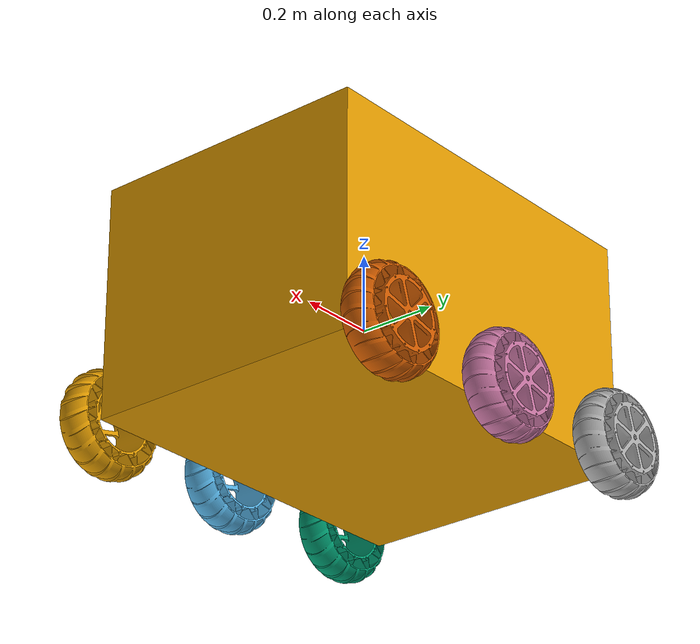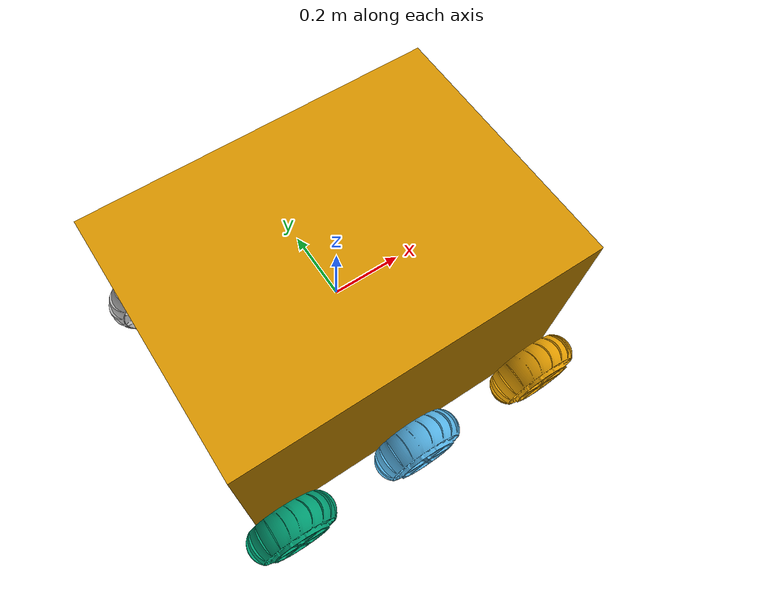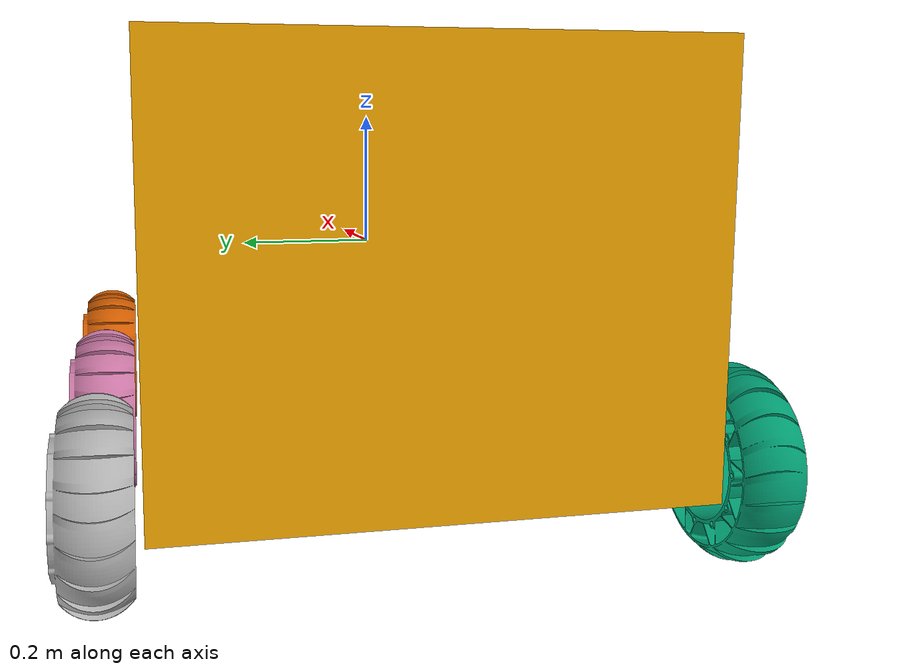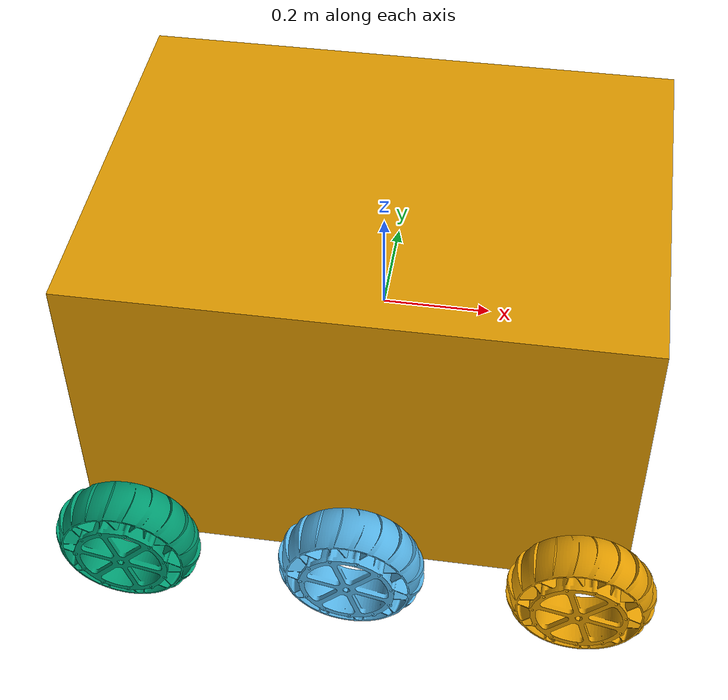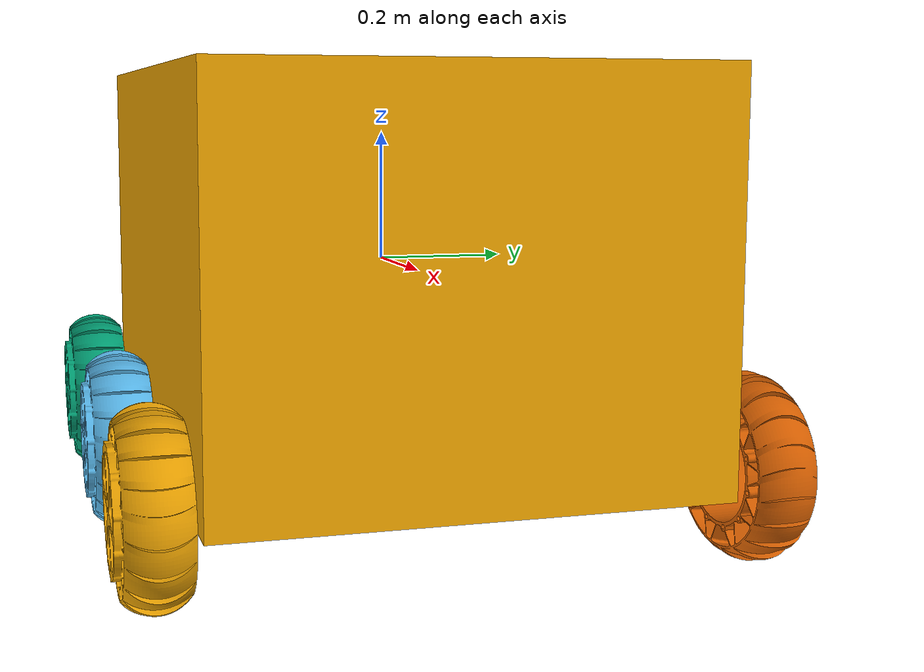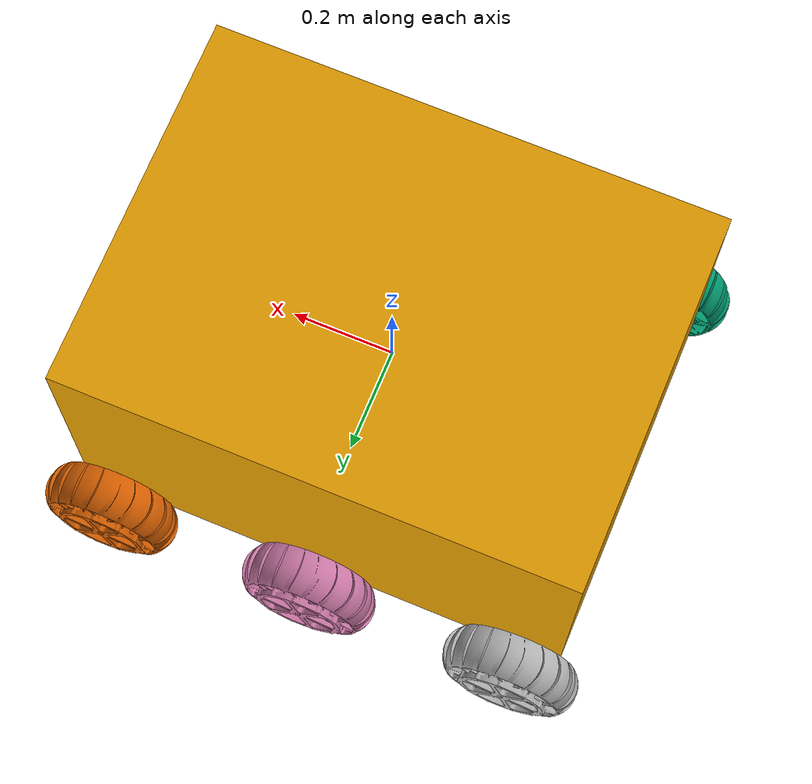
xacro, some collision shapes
<?xml version="1.0"?>
<robot xmlns:xacro="http://www.ros.org/wiki/xacro" name="rover">

  <xacro:property name="base_width" value="0.7357"/>
  <xacro:property name="base_len" value="1.0"/>
  <xacro:property name="base_height" value="0.6"/>
  <xacro:property name="wheel_radius" value="0.13"/>
  <xacro:property name="wheel_width" value="0.1"/>
  <xacro:property name="wheel_mass" value="2"/>

  <xacro:property name="PI" value="3.141592"/>

  <!--Interial macros-->
  <xacro:macro name="cylinder_inertia" params="m r h">
    <inertial>
      <mass value="${m}"/>
      <inertia ixx="${m*(3*r*r+h*h)/12}" ixy="0" ixz="0" iyy="${m*(3*r*r+h*h)/12}" iyz="0" izz="${m*r*r/2}"/>
    </inertial>
  </xacro:macro>

  <xacro:macro name="box_inertia" params="m w h d">
    <inertial>
      <mass value="${m}"/>
      <inertia ixx="${m / 12.0 * (d*d + h*h)}" ixy="0.0" ixz="0.0" iyy="${m / 12.0 * (w*w + h*h)}" iyz="0.0" izz="${m / 12.0 * (w*w + d*d)}"/>
    </inertial>
  </xacro:macro>

  <xacro:macro name="sphere_inertia" params="m r">
    <inertial>
      <mass value="${m}"/>
      <inertia ixx="${2.0*m*(r*r)/5.0}" ixy="0.0" ixz="0.0" iyy="${2.0*m*(r*r)/5.0}" iyz="0.0" izz="${2.0*m*(r*r)/5.0}"/>
    </inertial>
  </xacro:macro>

  <!--Base link-->
  <link name="base_link">
    <xacro:box_inertia m="3.0" w="${base_len}" h="${base_width}" d="${base_height}"/>
    <visual>
      <origin rpy="0 0 0" xyz="-0.25 0.0 0.2"/>
      <geometry>
        <mesh filename="package://mrover/rover_description/meshes/rover.dae" scale="1 1 1"/>
      </geometry>
    </visual>
    <collision>
      <geometry>
        <box size="${base_len} ${base_width} ${base_height}"/>
      </geometry>
    </collision>
  </link>

  <xacro:macro name="wheel" params="side reflect">
    <link name="front_${side}_wheel_link">
      <xacro:sphere_inertia m="${wheel_mass}" r="${wheel_radius}"/>
      <visual>
        <origin rpy="${reflect * PI/2} 0 0" xyz="0.0 0.0 0.0"/>
        <geometry>
          <mesh filename="package://mrover/rover_description/meshes/wheel.dae" scale="1 1 1"/>
        </geometry>
      </visual>
      <collision>
        <geometry>
          <sphere radius="${wheel_radius}"/>
        </geometry>
      </collision>
    </link>

    <link name="center_${side}_wheel_link">
      <xacro:cylinder_inertia m="${wheel_mass}" r="${wheel_radius}" h="${wheel_width}"/>
      <visual>
        <origin rpy="${reflect * PI/2} 0 0" xyz="0.0 0.0 0.0"/>
        <geometry>
          <mesh filename="package://mrover/rover_description/meshes/wheel.dae" scale="1 1 1"/>
        </geometry>
      </visual>
      <collision>
        <geometry>
          <cylinder length="${wheel_width}" radius="${wheel_radius}"/>
        </geometry>
      </collision>
    </link>

    <link name="back_${side}_wheel_link">
      <xacro:sphere_inertia m="${wheel_mass}" r="${wheel_radius}"/>

      <visual>
        <origin rpy="${reflect * PI/2} 0 0" xyz="0.0 0.0 0.0"/>
        <geometry>
          <mesh filename="package://mrover/rover_description/meshes/wheel.dae" scale="1 1 1"/>
        </geometry>
      </visual>
      <collision>
        <geometry>
          <sphere radius="${wheel_radius}"/>
        </geometry>
      </collision>
    </link>

    <joint name="front_${side}_wheel_joint" type="continuous">
      <parent link="base_link"/>
      <child link="front_${side}_wheel_link"/>
      <origin xyz="0.42 ${reflect * (base_width/2 + 0.06)} -0.27" rpy="${-PI/2} 0 0"/>
      <axis xyz="0 0 1"/>
    </joint>

    <joint name="center_${side}_wheel_joint" type="continuous">
      <parent link="base_link"/>
      <child link="center_${side}_wheel_link"/>
      <origin xyz="0 ${reflect * (base_width/2 + 0.06)} -0.27" rpy="${-PI/2} 0 0"/>
      <axis xyz="0 0 1"/>
    </joint>

    <joint name="back_${side}_wheel_joint" type="continuous">
      <parent link="base_link"/>
      <child link="back_${side}_wheel_link"/>
      <origin xyz="-0.42 ${reflect*(base_width/2 + 0.06)} -0.27" rpy="${-PI/2} 0 0"/>
      <axis xyz="0 0 1"/>
    </joint>
  </xacro:macro>

  <!-- IMU -->
  <joint name="imu_joint" type="fixed">
    <origin xyz="0 0 0.2"/>
    <parent link="base_link"/>
    <child link="imu_link"/>
  </joint>

  <link name="imu_link"></link>

  <!-- Camera -->
  <joint name="camera_joint" type="fixed">
    <origin xyz="0 0 0.2"/>
    <parent link="base_link"/>
    <child link="camera_link"/>
  </joint>

  <link name="camera_link">
    <collision>
      <origin xyz="0 0 0" rpy="0 0 0"/>
      <geometry>
        <box size="0.01 0.1 0.01"/>
      </geometry>
    </collision>

    <visual>
      <origin xyz="0 0 0" rpy="0 0 0"/>
      <geometry>
        <mesh filename="package://mrover/rover_description/meshes/zed2i.dae" scale="1 1 1"/>
      </geometry>
    </visual>

    <inertial>
      <mass value="1e-5"/>
      <origin xyz="0 0 0" rpy="0 0 0"/>
      <inertia ixx="1e-6" ixy="0" ixz="0" iyy="1e-6" iyz="0" izz="1e-6"/>
    </inertial>
  </link>

  <!-- Left Stereoscopic Camera -->
  <joint name="left_camera_joint" type="fixed">
    <origin xyz="0 0.05 0.2"/>
    <parent link="base_link"/>
    <child link="left_camera_link"/>
  </joint>

  <link name="left_camera_link">
    <collision>
      <origin xyz="0 0 0" rpy="0 0 0"/>
      <geometry>
        <box size="0.06 0.01 0.06"/>
      </geometry>
    </collision>

    <visual>
      <origin xyz="0 0 0" rpy="0 0 0"/>
      <geometry>
        <box size="0.06 0.01 0.06"/>
      </geometry>
    </visual>

    <inertial>
      <mass value="1e-5"/>
      <origin xyz="0 0 0" rpy="0 0 0"/>
      <inertia ixx="1e-6" ixy="0" ixz="0" iyy="1e-6" iyz="0" izz="1e-6"/>
    </inertial>
  </link>

  <!-- Right Stereoscopic Camera -->
  <joint name="right_camera_joint" type="fixed">
    <origin xyz="0 -0.05 0.2"/>
    <parent link="base_link"/>
    <child link="right_camera_link"/>
  </joint>

  <link name="right_camera_link">
    <collision>
      <origin xyz="0 0 0" rpy="0 0 0"/>
      <geometry>
        <box size="0.06 0.01 0.06"/>
      </geometry>
    </collision>

    <visual>
      <origin xyz="0 0 0" rpy="0 0 0"/>
      <geometry>
        <box size="0.06 0.01 0.06"/>
      </geometry>
    </visual>

    <inertial>
      <mass value="1e-5"/>
      <origin xyz="0 0 0" rpy="0 0 0"/>
      <inertia ixx="1e-6" ixy="0" ixz="0" iyy="1e-6" iyz="0" izz="1e-6"/>
    </inertial>
  </link>

  <xacro:include filename="$(find mrover)/rover_description/rover_gazebo_plugins.xacro"/>
  <xacro:wheel side="left" reflect="1"/>
  <xacro:wheel side="right" reflect="-1"/>
</robot>
